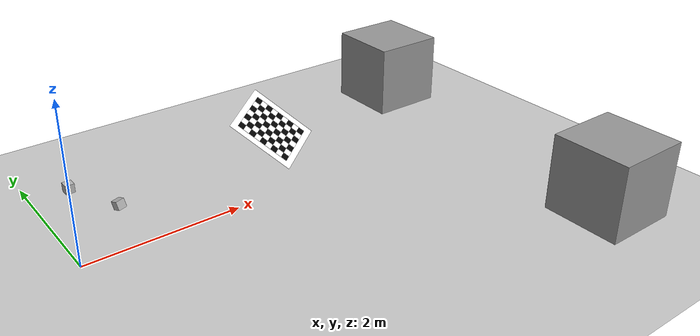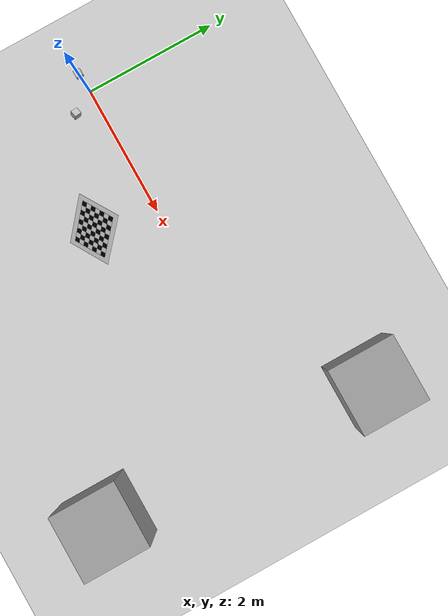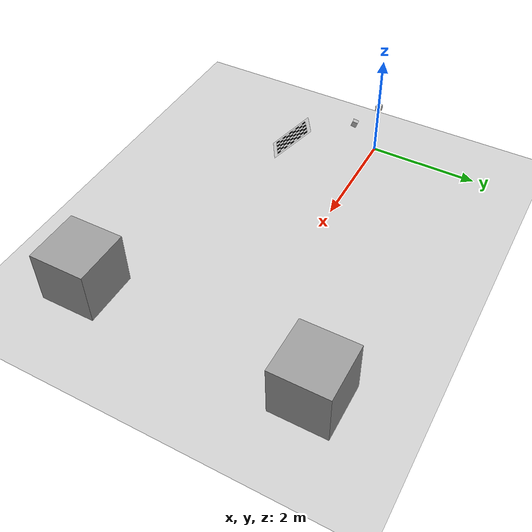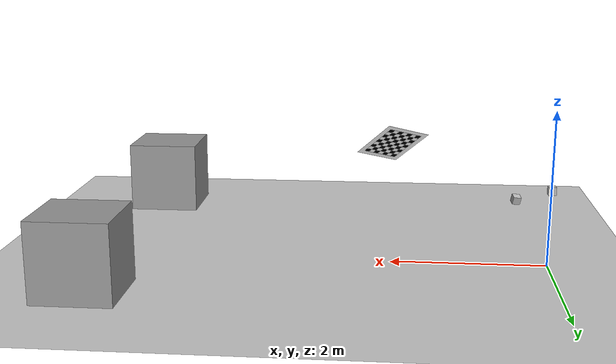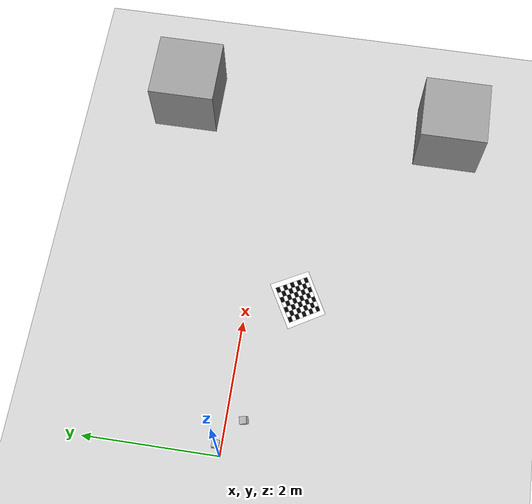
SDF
<sdf version="1.6">
 <world name="default">
  <light name="sun" type="directional">
   <pose>0 0 10 0 -0 0</pose>
   <diffuse>0.8 0.8 0.8 1</diffuse>
   <specular>0.2 0.2 0.2 1</specular>
   <attenuation>
    <range>1000</range>
    <constant>0.9</constant>
    <linear>0.01</linear>
    <quadratic>0.001</quadratic>
   </attenuation>
   <direction>-0.5 0.1 -0.9</direction>
  </light>
  <model name="ground_plane">
   <static>1</static>
   <link name="link">
    <collision name="collision">
     <geometry><plane><normal>0 0 1</normal><size>100 100</size></plane></geometry>
     <surface><friction><ode><mu>100</mu><mu2>50</mu2></ode></friction></surface>
    </collision>
    <visual name="visual">
     <cast_shadows>0</cast_shadows>
     <geometry><plane><normal>0 0 1</normal><size>100 100</size></plane></geometry>
     <material>
      <script><uri>file://media/materials/scripts/gazebo.material</uri><name>Gazebo/Grey</name></script>
     </material>
    </visual>
   </link>
  </model>
  <gravity>0 0 -9.8</gravity>
  <magnetic_field>6e-06 2.3e-05 -4.2e-05</magnetic_field>
  <atmosphere type="adiabatic"/>
  <physics name="default_physics" default="0" type="ode">
   <max_step_size>0.001</max_step_size>
   <real_time_factor>1</real_time_factor>
   <real_time_update_rate>1000</real_time_update_rate>
  </physics>
  <scene><ambient>0.4 0.4 0.4 1</ambient><background>0.7 0.7 0.7 1</background><shadows>1</shadows></scene>
  <spherical_coordinates>
   <surface_model>EARTH_WGS84</surface_model>
   <latitude_deg>0</latitude_deg>
   <longitude_deg>0</longitude_deg>
   <elevation>0</elevation>
   <heading_deg>0</heading_deg>
  </spherical_coordinates>
  <model name="camera">
   <static>1</static>
   <pose>0 0 1 0 -0 0</pose>
   <link name="camera_link">
    <inertial>
     <mass>0.1</mass>
     <inertia>
      <ixx>0.000166667</ixx>
      <iyy>0.000166667</iyy>
      <izz>0.000166667</izz>
      <ixy>0</ixy>
      <ixz>0</ixz>
      <iyz>0</iyz>
     </inertia>
    </inertial>
    <collision name="collision"><geometry><box><size>0.1 0.1 0.1</size></box></geometry></collision>
    <visual name="visual"><geometry><box><size>0.1 0.1 0.1</size></box></geometry></visual>
    <sensor name="camera1" type="camera">
     <update_rate>30</update_rate>
     <camera name="head">
      <horizontal_fov>1.57</horizontal_fov>
      <image><width>1280</width><height>720</height><format>R8G8B8</format></image>
      <clip><near>0.1</near><far>100</far></clip>
      <noise><type>gaussian</type><mean>0</mean><stddev>0.014</stddev></noise>
     </camera>
     <plugin name="camera_controller" filename="libgazebo_ros_camera.so">
      <alwaysOn>true</alwaysOn>
      <updateRate>0.0</updateRate>
      <cameraName>usb_cam</cameraName>
      <imageTopicName>image_raw</imageTopicName>
      <cameraInfoTopicName>camera_info</cameraInfoTopicName>
      <frameName>camera_link</frameName>
      <hackBaseline>0.07</hackBaseline>
      <distortionK1>0.0</distortionK1>
      <distortionK2>0.0</distortionK2>
      <distortionK3>0.0</distortionK3>
      <distortionT1>0.0</distortionT1>
      <distortionT2>0.0</distortionT2>
     </plugin>
     <visualize>1</visualize>
    </sensor>
   </link>
  </model>
  <model name="checkerboard_7_9_0_07">
   <static>1</static>
   <link name="checkerboard_7_9_0_07_body">
    <visual name="checker_0_0">
     <pose>-0.21 -0.28 0 0 -0 0</pose>
     <geometry><box><size>0.07 0.07 0.0002</size></box></geometry>
     <material>
      <ambient>0 0 0 1</ambient>
      <diffuse>0 0 0 1</diffuse>
      <specular>0 0 0 1</specular>
      <emissive>0 0 0 1</emissive>
     </material>
    </visual>
    <visual name="checker_0_1">
     <pose>-0.21 -0.21 0 0 -0 0</pose>
     <geometry><box><size>0.07 0.07 0.0002</size></box></geometry>
     <material>
      <ambient>1 1 1 1</ambient>
      <diffuse>1 1 1 1</diffuse>
      <specular>1 1 1 1</specular>
      <emissive>1 1 1 1</emissive>
     </material>
    </visual>
    <visual name="checker_0_2">
     <pose>-0.21 -0.14 0 0 -0 0</pose>
     <geometry><box><size>0.07 0.07 0.0002</size></box></geometry>
     <material>
      <ambient>0 0 0 1</ambient>
      <diffuse>0 0 0 1</diffuse>
      <specular>0 0 0 1</specular>
      <emissive>0 0 0 1</emissive>
     </material>
    </visual>
    <visual name="checker_0_3">
     <pose>-0.21 -0.07 0 0 -0 0</pose>
     <geometry><box><size>0.07 0.07 0.0002</size></box></geometry>
     <material>
      <ambient>1 1 1 1</ambient>
      <diffuse>1 1 1 1</diffuse>
      <specular>1 1 1 1</specular>
      <emissive>1 1 1 1</emissive>
     </material>
    </visual>
    <visual name="checker_0_4">
     <pose>-0.21 0 0 0 -0 0</pose>
     <geometry><box><size>0.07 0.07 0.0002</size></box></geometry>
     <material>
      <ambient>0 0 0 1</ambient>
      <diffuse>0 0 0 1</diffuse>
      <specular>0 0 0 1</specular>
      <emissive>0 0 0 1</emissive>
     </material>
    </visual>
    <visual name="checker_0_5">
     <pose>-0.21 0.07 0 0 -0 0</pose>
     <geometry><box><size>0.07 0.07 0.0002</size></box></geometry>
     <material>
      <ambient>1 1 1 1</ambient>
      <diffuse>1 1 1 1</diffuse>
      <specular>1 1 1 1</specular>
      <emissive>1 1 1 1</emissive>
     </material>
    </visual>
    <visual name="checker_0_6">
     <pose>-0.21 0.14 0 0 -0 0</pose>
     <geometry><box><size>0.07 0.07 0.0002</size></box></geometry>
     <material>
      <ambient>0 0 0 1</ambient>
      <diffuse>0 0 0 1</diffuse>
      <specular>0 0 0 1</specular>
      <emissive>0 0 0 1</emissive>
     </material>
    </visual>
    <visual name="checker_0_7">
     <pose>-0.21 0.21 0 0 -0 0</pose>
     <geometry><box><size>0.07 0.07 0.0002</size></box></geometry>
     <material>
      <ambient>1 1 1 1</ambient>
      <diffuse>1 1 1 1</diffuse>
      <specular>1 1 1 1</specular>
      <emissive>1 1 1 1</emissive>
     </material>
    </visual>
    <visual name="checker_0_8">
     <pose>-0.21 0.28 0 0 -0 0</pose>
     <geometry><box><size>0.07 0.07 0.0002</size></box></geometry>
     <material>
      <ambient>0 0 0 1</ambient>
      <diffuse>0 0 0 1</diffuse>
      <specular>0 0 0 1</specular>
      <emissive>0 0 0 1</emissive>
     </material>
    </visual>
    <visual name="checker_1_0">
     <pose>-0.14 -0.28 0 0 -0 0</pose>
     <geometry><box><size>0.07 0.07 0.0002</size></box></geometry>
     <material>
      <ambient>1 1 1 1</ambient>
      <diffuse>1 1 1 1</diffuse>
      <specular>1 1 1 1</specular>
      <emissive>1 1 1 1</emissive>
     </material>
    </visual>
    <visual name="checker_1_1">
     <pose>-0.14 -0.21 0 0 -0 0</pose>
     <geometry><box><size>0.07 0.07 0.0002</size></box></geometry>
     <material>
      <ambient>0 0 0 1</ambient>
      <diffuse>0 0 0 1</diffuse>
      <specular>0 0 0 1</specular>
      <emissive>0 0 0 1</emissive>
     </material>
    </visual>
    <visual name="checker_1_2">
     <pose>-0.14 -0.14 0 0 -0 0</pose>
     <geometry><box><size>0.07 0.07 0.0002</size></box></geometry>
     <material>
      <ambient>1 1 1 1</ambient>
      <diffuse>1 1 1 1</diffuse>
      <specular>1 1 1 1</specular>
      <emissive>1 1 1 1</emissive>
     </material>
    </visual>
    <visual name="checker_1_3">
     <pose>-0.14 -0.07 0 0 -0 0</pose>
     <geometry><box><size>0.07 0.07 0.0002</size></box></geometry>
     <material>
      <ambient>0 0 0 1</ambient>
      <diffuse>0 0 0 1</diffuse>
      <specular>0 0 0 1</specular>
      <emissive>0 0 0 1</emissive>
     </material>
    </visual>
    <visual name="checker_1_4">
     <pose>-0.14 0 0 0 -0 0</pose>
     <geometry><box><size>0.07 0.07 0.0002</size></box></geometry>
     <material>
      <ambient>1 1 1 1</ambient>
      <diffuse>1 1 1 1</diffuse>
      <specular>1 1 1 1</specular>
      <emissive>1 1 1 1</emissive>
     </material>
    </visual>
    <visual name="checker_1_5">
     <pose>-0.14 0.07 0 0 -0 0</pose>
     <geometry><box><size>0.07 0.07 0.0002</size></box></geometry>
     <material>
      <ambient>0 0 0 1</ambient>
      <diffuse>0 0 0 1</diffuse>
      <specular>0 0 0 1</specular>
      <emissive>0 0 0 1</emissive>
     </material>
    </visual>
    <visual name="checker_1_6">
     <pose>-0.14 0.14 0 0 -0 0</pose>
     <geometry><box><size>0.07 0.07 0.0002</size></box></geometry>
     <material>
      <ambient>1 1 1 1</ambient>
      <diffuse>1 1 1 1</diffuse>
      <specular>1 1 1 1</specular>
      <emissive>1 1 1 1</emissive>
     </material>
    </visual>
    <visual name="checker_1_7">
     <pose>-0.14 0.21 0 0 -0 0</pose>
     <geometry><box><size>0.07 0.07 0.0002</size></box></geometry>
     <material>
      <ambient>0 0 0 1</ambient>
      <diffuse>0 0 0 1</diffuse>
      <specular>0 0 0 1</specular>
      <emissive>0 0 0 1</emissive>
     </material>
    </visual>
    <visual name="checker_1_8">
     <pose>-0.14 0.28 0 0 -0 0</pose>
     <geometry><box><size>0.07 0.07 0.0002</size></box></geometry>
     <material>
      <ambient>1 1 1 1</ambient>
      <diffuse>1 1 1 1</diffuse>
      <specular>1 1 1 1</specular>
      <emissive>1 1 1 1</emissive>
     </material>
    </visual>
    <visual name="checker_2_0">
     <pose>-0.07 -0.28 0 0 -0 0</pose>
     <geometry><box><size>0.07 0.07 0.0002</size></box></geometry>
     <material>
      <ambient>0 0 0 1</ambient>
      <diffuse>0 0 0 1</diffuse>
      <specular>0 0 0 1</specular>
      <emissive>0 0 0 1</emissive>
     </material>
    </visual>
    <visual name="checker_2_1">
     <pose>-0.07 -0.21 0 0 -0 0</pose>
     <geometry><box><size>0.07 0.07 0.0002</size></box></geometry>
     <material>
      <ambient>1 1 1 1</ambient>
      <diffuse>1 1 1 1</diffuse>
      <specular>1 1 1 1</specular>
      <emissive>1 1 1 1</emissive>
     </material>
    </visual>
    <visual name="checker_2_2">
     <pose>-0.07 -0.14 0 0 -0 0</pose>
     <geometry><box><size>0.07 0.07 0.0002</size></box></geometry>
     <material>
      <ambient>0 0 0 1</ambient>
      <diffuse>0 0 0 1</diffuse>
      <specular>0 0 0 1</specular>
      <emissive>0 0 0 1</emissive>
     </material>
    </visual>
    <visual name="checker_2_3">
     <pose>-0.07 -0.07 0 0 -0 0</pose>
     <geometry><box><size>0.07 0.07 0.0002</size></box></geometry>
     <material>
      <ambient>1 1 1 1</ambient>
      <diffuse>1 1 1 1</diffuse>
      <specular>1 1 1 1</specular>
      <emissive>1 1 1 1</emissive>
     </material>
    </visual>
    <visual name="checker_2_4">
     <pose>-0.07 0 0 0 -0 0</pose>
     <geometry><box><size>0.07 0.07 0.0002</size></box></geometry>
     <material>
      <ambient>0 0 0 1</ambient>
      <diffuse>0 0 0 1</diffuse>
      <specular>0 0 0 1</specular>
      <emissive>0 0 0 1</emissive>
     </material>
    </visual>
    <visual name="checker_2_5">
     <pose>-0.07 0.07 0 0 -0 0</pose>
     <geometry><box><size>0.07 0.07 0.0002</size></box></geometry>
     <material>
      <ambient>1 1 1 1</ambient>
      <diffuse>1 1 1 1</diffuse>
      <specular>1 1 1 1</specular>
      <emissive>1 1 1 1</emissive>
     </material>
    </visual>
    <visual name="checker_2_6">
     <pose>-0.07 0.14 0 0 -0 0</pose>
     <geometry><box><size>0.07 0.07 0.0002</size></box></geometry>
     <material>
      <ambient>0 0 0 1</ambient>
      <diffuse>0 0 0 1</diffuse>
      <specular>0 0 0 1</specular>
      <emissive>0 0 0 1</emissive>
     </material>
    </visual>
    <visual name="checker_2_7">
     <pose>-0.07 0.21 0 0 -0 0</pose>
     <geometry><box><size>0.07 0.07 0.0002</size></box></geometry>
     <material>
      <ambient>1 1 1 1</ambient>
      <diffuse>1 1 1 1</diffuse>
      <specular>1 1 1 1</specular>
      <emissive>1 1 1 1</emissive>
     </material>
    </visual>
    <visual name="checker_2_8">
     <pose>-0.07 0.28 0 0 -0 0</pose>
     <geometry><box><size>0.07 0.07 0.0002</size></box></geometry>
     <material>
      <ambient>0 0 0 1</ambient>
      <diffuse>0 0 0 1</diffuse>
      <specular>0 0 0 1</specular>
      <emissive>0 0 0 1</emissive>
     </material>
    </visual>
    <visual name="checker_3_0">
     <pose>0 -0.28 0 0 -0 0</pose>
     <geometry><box><size>0.07 0.07 0.0002</size></box></geometry>
     <material>
      <ambient>1 1 1 1</ambient>
      <diffuse>1 1 1 1</diffuse>
      <specular>1 1 1 1</specular>
      <emissive>1 1 1 1</emissive>
     </material>
    </visual>
    <visual name="checker_3_1">
     <pose>0 -0.21 0 0 -0 0</pose>
     <geometry><box><size>0.07 0.07 0.0002</size></box></geometry>
     <material>
      <ambient>0 0 0 1</ambient>
      <diffuse>0 0 0 1</diffuse>
      <specular>0 0 0 1</specular>
      <emissive>0 0 0 1</emissive>
     </material>
    </visual>
    <visual name="checker_3_2">
     <pose>0 -0.14 0 0 -0 0</pose>
     <geometry><box><size>0.07 0.07 0.0002</size></box></geometry>
     <material>
      <ambient>1 1 1 1</ambient>
      <diffuse>1 1 1 1</diffuse>
      <specular>1 1 1 1</specular>
      <emissive>1 1 1 1</emissive>
     </material>
    </visual>
    <visual name="checker_3_3">
     <pose>0 -0.07 0 0 -0 0</pose>
     <geometry><box><size>0.07 0.07 0.0002</size></box></geometry>
     <material>
      <ambient>0 0 0 1</ambient>
      <diffuse>0 0 0 1</diffuse>
      <specular>0 0 0 1</specular>
      <emissive>0 0 0 1</emissive>
     </material>
    </visual>
    <visual name="checker_3_4">
     <geometry><box><size>0.07 0.07 0.0002</size></box></geometry>
     <material>
      <ambient>1 1 1 1</ambient>
      <diffuse>1 1 1 1</diffuse>
      <specular>1 1 1 1</specular>
      <emissive>1 1 1 1</emissive>
     </material>
    </visual>
    <visual name="checker_3_5">
     <pose>0 0.07 0 0 -0 0</pose>
     <geometry><box><size>0.07 0.07 0.0002</size></box></geometry>
     <material>
      <ambient>0 0 0 1</ambient>
      <diffuse>0 0 0 1</diffuse>
      <specular>0 0 0 1</specular>
      <emissive>0 0 0 1</emissive>
     </material>
    </visual>
    <visual name="checker_3_6">
     <pose>0 0.14 0 0 -0 0</pose>
     <geometry><box><size>0.07 0.07 0.0002</size></box></geometry>
     <material>
      <ambient>1 1 1 1</ambient>
      <diffuse>1 1 1 1</diffuse>
      <specular>1 1 1 1</specular>
      <emissive>1 1 1 1</emissive>
     </material>
    </visual>
    <visual name="checker_3_7">
     <pose>0 0.21 0 0 -0 0</pose>
     <geometry><box><size>0.07 0.07 0.0002</size></box></geometry>
     <material>
      <ambient>0 0 0 1</ambient>
      <diffuse>0 0 0 1</diffuse>
      <specular>0 0 0 1</specular>
      <emissive>0 0 0 1</emissive>
     </material>
    </visual>
    <visual name="checker_3_8">
     <pose>0 0.28 0 0 -0 0</pose>
     <geometry><box><size>0.07 0.07 0.0002</size></box></geometry>
     <material>
      <ambient>1 1 1 1</ambient>
      <diffuse>1 1 1 1</diffuse>
      <specular>1 1 1 1</specular>
      <emissive>1 1 1 1</emissive>
     </material>
    </visual>
    <visual name="checker_4_0">
     <pose>0.07 -0.28 0 0 -0 0</pose>
     <geometry><box><size>0.07 0.07 0.0002</size></box></geometry>
     <material>
      <ambient>0 0 0 1</ambient>
      <diffuse>0 0 0 1</diffuse>
      <specular>0 0 0 1</specular>
      <emissive>0 0 0 1</emissive>
     </material>
    </visual>
    <visual name="checker_4_1">
     <pose>0.07 -0.21 0 0 -0 0</pose>
     <geometry><box><size>0.07 0.07 0.0002</size></box></geometry>
     <material>
      <ambient>1 1 1 1</ambient>
      <diffuse>1 1 1 1</diffuse>
      <specular>1 1 1 1</specular>
      <emissive>1 1 1 1</emissive>
     </material>
    </visual>
    <visual name="checker_4_2">
     <pose>0.07 -0.14 0 0 -0 0</pose>
     <geometry><box><size>0.07 0.07 0.0002</size></box></geometry>
     <material>
      <ambient>0 0 0 1</ambient>
      <diffuse>0 0 0 1</diffuse>
      <specular>0 0 0 1</specular>
      <emissive>0 0 0 1</emissive>
     </material>
    </visual>
    <visual name="checker_4_3">
     <pose>0.07 -0.07 0 0 -0 0</pose>
     <geometry><box><size>0.07 0.07 0.0002</size></box></geometry>
     <material>
      <ambient>1 1 1 1</ambient>
      <diffuse>1 1 1 1</diffuse>
      <specular>1 1 1 1</specular>
      <emissive>1 1 1 1</emissive>
     </material>
    </visual>
    <visual name="checker_4_4">
     <pose>0.07 0 0 0 -0 0</pose>
     <geometry><box><size>0.07 0.07 0.0002</size></box></geometry>
     <material>
      <ambient>0 0 0 1</ambient>
      <diffuse>0 0 0 1</diffuse>
      <specular>0 0 0 1</specular>
      <emissive>0 0 0 1</emissive>
     </material>
    </visual>
    <visual name="checker_4_5">
     <pose>0.07 0.07 0 0 -0 0</pose>
     <geometry><box><size>0.07 0.07 0.0002</size></box></geometry>
     <material>
      <ambient>1 1 1 1</ambient>
      <diffuse>1 1 1 1</diffuse>
      <specular>1 1 1 1</specular>
      <emissive>1 1 1 1</emissive>
     </material>
    </visual>
    <visual name="checker_4_6">
     <pose>0.07 0.14 0 0 -0 0</pose>
     <geometry><box><size>0.07 0.07 0.0002</size></box></geometry>
     <material>
      <ambient>0 0 0 1</ambient>
      <diffuse>0 0 0 1</diffuse>
      <specular>0 0 0 1</specular>
      <emissive>0 0 0 1</emissive>
     </material>
    </visual>
    <visual name="checker_4_7">
     <pose>0.07 0.21 0 0 -0 0</pose>
     <geometry><box><size>0.07 0.07 0.0002</size></box></geometry>
     <material>
      <ambient>1 1 1 1</ambient>
      <diffuse>1 1 1 1</diffuse>
      <specular>1 1 1 1</specular>
      <emissive>1 1 1 1</emissive>
     </material>
    </visual>
    <visual name="checker_4_8">
     <pose>0.07 0.28 0 0 -0 0</pose>
     <geometry><box><size>0.07 0.07 0.0002</size></box></geometry>
     <material>
      <ambient>0 0 0 1</ambient>
      <diffuse>0 0 0 1</diffuse>
      <specular>0 0 0 1</specular>
      <emissive>0 0 0 1</emissive>
     </material>
    </visual>
    <visual name="checker_5_0">
     <pose>0.14 -0.28 0 0 -0 0</pose>
     <geometry><box><size>0.07 0.07 0.0002</size></box></geometry>
     <material>
      <ambient>1 1 1 1</ambient>
      <diffuse>1 1 1 1</diffuse>
      <specular>1 1 1 1</specular>
      <emissive>1 1 1 1</emissive>
     </material>
    </visual>
    <visual name="checker_5_1">
     <pose>0.14 -0.21 0 0 -0 0</pose>
     <geometry><box><size>0.07 0.07 0.0002</size></box></geometry>
     <material>
      <ambient>0 0 0 1</ambient>
      <diffuse>0 0 0 1</diffuse>
      <specular>0 0 0 1</specular>
      <emissive>0 0 0 1</emissive>
     </material>
    </visual>
    <visual name="checker_5_2">
     <pose>0.14 -0.14 0 0 -0 0</pose>
     <geometry><box><size>0.07 0.07 0.0002</size></box></geometry>
     <material>
      <ambient>1 1 1 1</ambient>
      <diffuse>1 1 1 1</diffuse>
      <specular>1 1 1 1</specular>
      <emissive>1 1 1 1</emissive>
     </material>
    </visual>
    <visual name="checker_5_3">
     <pose>0.14 -0.07 0 0 -0 0</pose>
     <geometry><box><size>0.07 0.07 0.0002</size></box></geometry>
     <material>
      <ambient>0 0 0 1</ambient>
      <diffuse>0 0 0 1</diffuse>
      <specular>0 0 0 1</specular>
      <emissive>0 0 0 1</emissive>
     </material>
    </visual>
    <visual name="checker_5_4">
     <pose>0.14 0 0 0 -0 0</pose>
     <geometry><box><size>0.07 0.07 0.0002</size></box></geometry>
     <material>
      <ambient>1 1 1 1</ambient>
      <diffuse>1 1 1 1</diffuse>
      <specular>1 1 1 1</specular>
      <emissive>1 1 1 1</emissive>
     </material>
    </visual>
    <visual name="checker_5_5">
     <pose>0.14 0.07 0 0 -0 0</pose>
     <geometry><box><size>0.07 0.07 0.0002</size></box></geometry>
     <material>
      <ambient>0 0 0 1</ambient>
      <diffuse>0 0 0 1</diffuse>
      <specular>0 0 0 1</specular>
      <emissive>0 0 0 1</emissive>
     </material>
    </visual>
    <visual name="checker_5_6">
     <pose>0.14 0.14 0 0 -0 0</pose>
     <geometry><box><size>0.07 0.07 0.0002</size></box></geometry>
     <material>
      <ambient>1 1 1 1</ambient>
      <diffuse>1 1 1 1</diffuse>
      <specular>1 1 1 1</specular>
      <emissive>1 1 1 1</emissive>
     </material>
    </visual>
    <visual name="checker_5_7">
     <pose>0.14 0.21 0 0 -0 0</pose>
     <geometry><box><size>0.07 0.07 0.0002</size></box></geometry>
     <material>
      <ambient>0 0 0 1</ambient>
      <diffuse>0 0 0 1</diffuse>
      <specular>0 0 0 1</specular>
      <emissive>0 0 0 1</emissive>
     </material>
    </visual>
    <visual name="checker_5_8">
     <pose>0.14 0.28 0 0 -0 0</pose>
     <geometry><box><size>0.07 0.07 0.0002</size></box></geometry>
     <material>
      <ambient>1 1 1 1</ambient>
      <diffuse>1 1 1 1</diffuse>
      <specular>1 1 1 1</specular>
      <emissive>1 1 1 1</emissive>
     </material>
    </visual>
    <visual name="checker_6_0">
     <pose>0.21 -0.28 0 0 -0 0</pose>
     <geometry><box><size>0.07 0.07 0.0002</size></box></geometry>
     <material>
      <ambient>0 0 0 1</ambient>
      <diffuse>0 0 0 1</diffuse>
      <specular>0 0 0 1</specular>
      <emissive>0 0 0 1</emissive>
     </material>
    </visual>
    <visual name="checker_6_1">
     <pose>0.21 -0.21 0 0 -0 0</pose>
     <geometry><box><size>0.07 0.07 0.0002</size></box></geometry>
     <material>
      <ambient>1 1 1 1</ambient>
      <diffuse>1 1 1 1</diffuse>
      <specular>1 1 1 1</specular>
      <emissive>1 1 1 1</emissive>
     </material>
    </visual>
    <visual name="checker_6_2">
     <pose>0.21 -0.14 0 0 -0 0</pose>
     <geometry><box><size>0.07 0.07 0.0002</size></box></geometry>
     <material>
      <ambient>0 0 0 1</ambient>
      <diffuse>0 0 0 1</diffuse>
      <specular>0 0 0 1</specular>
      <emissive>0 0 0 1</emissive>
     </material>
    </visual>
    <visual name="checker_6_3">
     <pose>0.21 -0.07 0 0 -0 0</pose>
     <geometry><box><size>0.07 0.07 0.0002</size></box></geometry>
     <material>
      <ambient>1 1 1 1</ambient>
      <diffuse>1 1 1 1</diffuse>
      <specular>1 1 1 1</specular>
      <emissive>1 1 1 1</emissive>
     </material>
    </visual>
    <visual name="checker_6_4">
     <pose>0.21 0 0 0 -0 0</pose>
     <geometry><box><size>0.07 0.07 0.0002</size></box></geometry>
     <material>
      <ambient>0 0 0 1</ambient>
      <diffuse>0 0 0 1</diffuse>
      <specular>0 0 0 1</specular>
      <emissive>0 0 0 1</emissive>
     </material>
    </visual>
    <visual name="checker_6_5">
     <pose>0.21 0.07 0 0 -0 0</pose>
     <geometry><box><size>0.07 0.07 0.0002</size></box></geometry>
     <material>
      <ambient>1 1 1 1</ambient>
      <diffuse>1 1 1 1</diffuse>
      <specular>1 1 1 1</specular>
      <emissive>1 1 1 1</emissive>
     </material>
    </visual>
    <visual name="checker_6_6">
     <pose>0.21 0.14 0 0 -0 0</pose>
     <geometry><box><size>0.07 0.07 0.0002</size></box></geometry>
     <material>
      <ambient>0 0 0 1</ambient>
      <diffuse>0 0 0 1</diffuse>
      <specular>0 0 0 1</specular>
      <emissive>0 0 0 1</emissive>
     </material>
    </visual>
    <visual name="checker_6_7">
     <pose>0.21 0.21 0 0 -0 0</pose>
     <geometry><box><size>0.07 0.07 0.0002</size></box></geometry>
     <material>
      <ambient>1 1 1 1</ambient>
      <diffuse>1 1 1 1</diffuse>
      <specular>1 1 1 1</specular>
      <emissive>1 1 1 1</emissive>
     </material>
    </visual>
    <visual name="checker_6_8">
     <pose>0.21 0.28 0 0 -0 0</pose>
     <geometry><box><size>0.07 0.07 0.0002</size></box></geometry>
     <material>
      <ambient>0 0 0 1</ambient>
      <diffuse>0 0 0 1</diffuse>
      <specular>0 0 0 1</specular>
      <emissive>0 0 0 1</emissive>
     </material>
    </visual>
    <visual name="checker_backdrop">
     <geometry><box><size>0.63 0.77 0.0001</size></box></geometry>
     <material>
      <ambient>1 1 1 1</ambient>
      <diffuse>1 1 1 1</diffuse>
      <specular>1 1 1 1</specular>
      <emissive>1 1 1 1</emissive>
     </material>
    </visual>
    <collision name="collision"><geometry><box><size>0.63 0.77 0.0001</size></box></geometry></collision>
   </link>
   <plugin name="checkerboard_ctrl" filename="libcheckerboard_ctrl.so"/>
   <pose>2 -0.8 1.4 -0.65 0.27 -2.6</pose>
  </model>
  <model name="camera_clone">
   <static>1</static>
   <pose>0.4 -0.3 0.8 -0.3 -0.099999 0.2</pose>
   <link name="camera_link">
    <inertial>
     <mass>0.1</mass>
     <inertia>
      <ixx>0.000166667</ixx>
      <iyy>0.000166667</iyy>
      <izz>0.000166667</izz>
      <ixy>0</ixy>
      <ixz>0</ixz>
      <iyz>0</iyz>
     </inertia>
    </inertial>
    <collision name="collision"><geometry><box><size>0.1 0.1 0.1</size></box></geometry></collision>
    <visual name="visual"><geometry><box><size>0.1 0.1 0.1</size></box></geometry></visual>
    <sensor name="camera2" type="camera">
     <update_rate>30</update_rate>
     <camera name="head">
      <horizontal_fov>1.57</horizontal_fov>
      <image><width>1280</width><height>720</height><format>R8G8B8</format></image>
      <clip><near>0.1</near><far>100</far></clip>
      <noise><type>gaussian</type><mean>0</mean><stddev>0.014</stddev></noise>
     </camera>
     <plugin name="camera_controller" filename="libgazebo_ros_camera.so">
      <alwaysOn>true</alwaysOn>
      <updateRate>0.0</updateRate>
      <cameraName>usb_cam2</cameraName>
      <imageTopicName>image_raw</imageTopicName>
      <cameraInfoTopicName>camera_info</cameraInfoTopicName>
      <frameName>camera_link</frameName>
      <hackBaseline>0.007</hackBaseline>
      <distortionK1>0.0</distortionK1>
      <distortionK2>0.0</distortionK2>
      <distortionK3>0.0</distortionK3>
      <distortionT1>0.0</distortionT1>
      <distortionT2>0.0</distortionT2>
     </plugin>
     <visualize>1</visualize>
    </sensor>
   </link>
  </model>
  <model name="unit_box">
   <pose>5.49427 -2.72777 0.499995 -1e-05 0 0</pose>
   <link name="link">
    <inertial>
     <mass>1</mass>
     <inertia>
      <ixx>0.166667</ixx>
      <ixy>0</ixy>
      <ixz>0</ixz>
      <iyy>0.166667</iyy>
      <iyz>0</iyz>
      <izz>0.166667</izz>
     </inertia>
    </inertial>
    <collision name="collision"><geometry><box><size>1 1 1</size></box></geometry></collision>
    <visual name="visual">
     <geometry><box><size>1 1 1</size></box></geometry>
     <material>
      <script><name>Gazebo/Grey</name><uri>file://media/materials/scripts/gazebo.material</uri></script>
     </material>
    </visual>
   </link>
  </model>
  <model name="unit_box_clone">
   <pose>5.61292 1.4645 0.499995 0 -1e-05 0</pose>
   <link name="link">
    <inertial>
     <mass>1</mass>
     <inertia>
      <ixx>0.166667</ixx>
      <ixy>0</ixy>
      <ixz>0</ixz>
      <iyy>0.166667</iyy>
      <iyz>0</iyz>
      <izz>0.166667</izz>
     </inertia>
    </inertial>
    <collision name="collision"><geometry><box><size>1 1 1</size></box></geometry></collision>
    <visual name="visual">
     <geometry><box><size>1 1 1</size></box></geometry>
     <material>
      <script><name>Gazebo/Grey</name><uri>file://media/materials/scripts/gazebo.material</uri></script>
     </material>
    </visual>
   </link>
  </model>
 </world>
</sdf>
